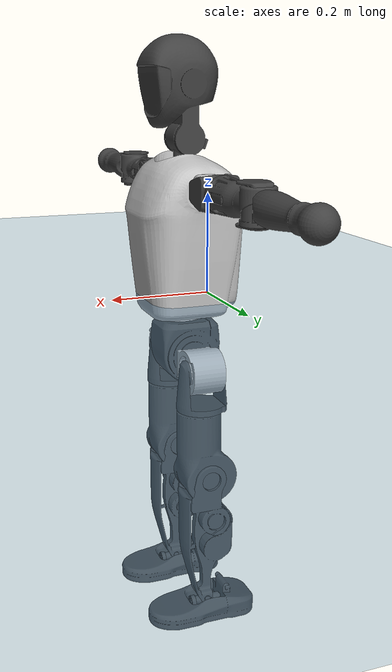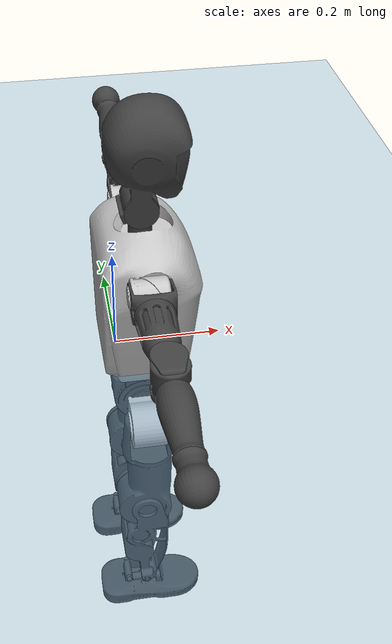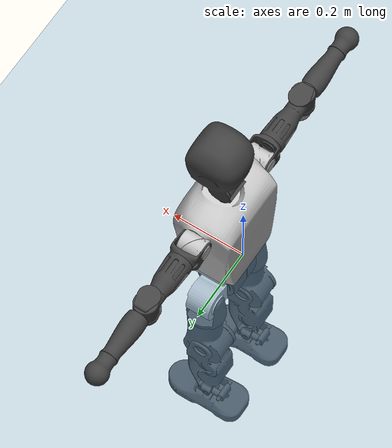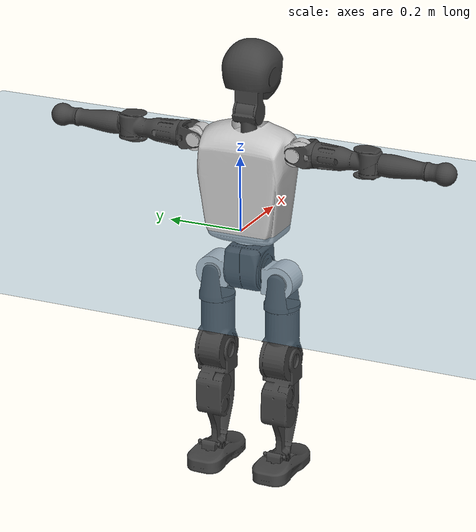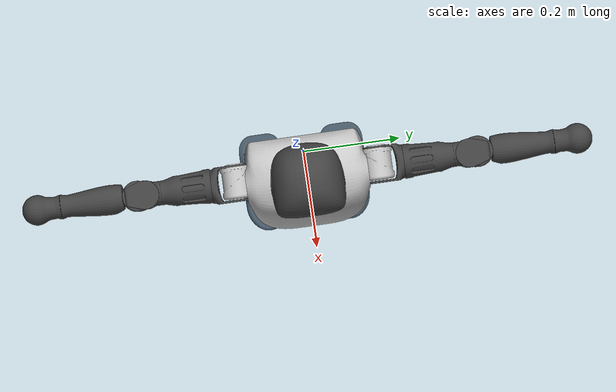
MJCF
<mujoco model="T1">
  <compiler angle="radian" assetdir="assets" balanceinertia="true" inertiafromgeom="false"/>

  <option timestep="0.005" density="1.2" viscosity="2e-05"/>

  <size nkey="1"/>

  <visual>
    <quality shadowsize="8192"/>
    <map shadowclip="0.5"/>
  </visual>

  <default>
    <default class="/">
      <joint armature="0.01" damping="0.01" frictionloss="0.1"/>
      <geom contype="0" conaffinity="0" group="1" solref="-1000 -80"/>
      <site size="0.01 0.005 0.005" group="5"/>
      <general forcelimited="true" biastype="affine" gainprm="25" biasprm="0 -25 -0.6"/>
      <default class="t1">
        <geom rgba="0.25 0.25 0.25 1"/>
        <default class="visual">
          <geom type="mesh" group="2"/>
        </default>
        <default class="collision">
          <geom group="3"/>
        </default>
        <default class="foot">
          <geom size="0.1115 0.05 0.015" type="box" condim="6" group="4" priority="1" solimp="0.015 1 0.015"/>
        </default>
        <default class="reward_collision_sphere">
          <geom group="5" rgba="1 0 0 1"/>
        </default>
      </default>
    </default>
  </default>

  <asset>
    <texture type="skybox" colorspace="auto" name="//unnamed_texture_0" builtin="gradient" rgb1="0.95 0.95 0.95" rgb2="0.95 0.95 0.95" width="100" height="600"/>
    <texture type="2d" colorspace="auto" name="texplane" builtin="checker" rgb1="0.345 0.575 0.748" rgb2="0.345 0.575 0.748" markrgb="1 1 1" width="512" height="512"/>
    <material name="MatPlane" class="/" texture="texplane" texuniform="true" texrepeat="2 2" specular="0.9"/>
    <mesh name="Trunk" class="/" file="Trunk.stl"/>
    <mesh name="H1" class="/" file="H1.stl"/>
    <mesh name="H2" class="/" file="H2.stl"/>
    <mesh name="AL1" class="/" file="AL1.stl"/>
    <mesh name="AL2" class="/" file="AL2.stl"/>
    <mesh name="AL3" class="/" file="AL3.stl"/>
    <mesh name="left_hand_link" class="/" file="left_hand_link.stl"/>
    <mesh name="AR1" class="/" file="AR1.stl"/>
    <mesh name="AR2" class="/" file="AR2.stl"/>
    <mesh name="AR3" class="/" file="AR3.stl"/>
    <mesh name="right_hand_link" class="/" file="right_hand_link.stl"/>
    <mesh name="Waist" class="/" file="Waist.stl"/>
    <mesh name="Hip_Pitch_Left" class="/" file="Hip_Pitch_Left.stl"/>
    <mesh name="Hip_Roll_Left" class="/" file="Hip_Roll_Left.stl"/>
    <mesh name="Hip_Yaw_Left" class="/" file="Hip_Yaw_Left.stl"/>
    <mesh name="Shank_Left" class="/" file="Shank_Left.stl"/>
    <mesh name="Ankle_Cross_Left" class="/" file="Ankle_Cross_Left.stl"/>
    <mesh name="left_foot_link" class="/" file="left_foot_link.stl"/>
    <mesh name="Hip_Pitch_Right" class="/" file="Hip_Pitch_Right.stl"/>
    <mesh name="Hip_Roll_Right" class="/" file="Hip_Roll_Right.stl"/>
    <mesh name="Hip_Yaw_Right" class="/" file="Hip_Yaw_Right.stl"/>
    <mesh name="Shank_Right" class="/" file="Shank_Right.stl"/>
    <mesh name="Ankle_Cross_Right" class="/" file="Ankle_Cross_Right.stl"/>
    <mesh name="right_foot_link" class="/" file="right_foot_link.stl"/>
  </asset>

  <worldbody>
    <geom name="floor" class="/" size="100 100 0.125" type="plane" group="0" material="MatPlane"/>
    <light name="toplight_shadow" class="/" pos="0 0 5" dir="0.0990148 0.0990148 -0.990148" type="directional" ambient="0.04 0.04 0.04" diffuse="0.55 0.55 0.55" specular="0.12 0.12 0.12"/>
    <light name="toplight_fill" class="/" pos="0 0 5" dir="0.0990148 0.0990148 -0.990148" type="directional" castshadow="false" ambient="0.04 0.04 0.04" diffuse="0.3 0.3 0.3" specular="0.08 0.08 0.08"/>
    <body name="trunk" childclass="t1" pos="-9.77205e-05 -1.31731e-05 0.000544295" quat="1 1.79601e-05 -0.000101825 -1.69762e-05">
      <inertial pos="0.0435971 -0.00113129 0.106236" quat="0.999948 0.000279948 -0.0100175 -0.0016419" mass="8.67721" diaginertia="0.0306417 0.0451 0.0576346"/>
      <joint name="//unnamed_joint_0" type="free" armature="0" damping="0" frictionloss="0"/>
      <geom name="//unnamed_geom_1" class="visual" rgba="0.76 0.76 0.76 1" mesh="Trunk"/>
      <geom name="//unnamed_geom_2" class="collision" size="0.0675673 0.0900897 0.135135" pos="0.0481282 0 0.120672" type="box"/>
      <geom name="//unnamed_geom_3" class="reward_collision_sphere" size="0.103603" pos="0.0481282 0 0.10056"/>
      <geom name="//unnamed_geom_4" class="reward_collision_sphere" size="0.0135135" pos="0.0481282 0.0760712 0"/>
      <geom name="//unnamed_geom_5" class="reward_collision_sphere" size="0.0135135" pos="0.0481282 -0.0760712 0"/>
      <geom name="//unnamed_geom_6" class="reward_collision_sphere" size="0.0135135" pos="0.0481282 0.0957602 0.181008"/>
      <geom name="//unnamed_geom_7" class="reward_collision_sphere" size="0.0135135" pos="0.0481282 -0.0957602 0.181008"/>
      <site name="imu" pos="-1.93304e-05 0.00647251 0.0050558" size="0.00900897"/>
      <camera name="track" pos="0 -1.78991 0" quat="0.707107 0.707107 0 0" mode="trackcom"/>
      <camera name="ego_camera" pos="0.0978606 0 0.422352" quat="-0.5 -0.5 0.5 0.5"/>
      <body name="H1" pos="0.0498408 0.000114512 0.244883" quat="1 -0.000362753 -0.00014352 -0.000375882">
        <inertial pos="-0.00059706 -0.0014322 0.0567462" quat="0.762779 -0.0174434 0.00219712 0.646421" mass="0.321157" diaginertia="8.15909e-05 0.000127966 0.00015706"/>
        <joint name="AAHead_yaw" pos="0 0 0" axis="0.0053067 0.00154459 0.999985" range="-1.59094 1.60956" armature="0.00892244" damping="0.00583478" frictionloss="0.0910632"/>
        <geom name="//unnamed_geom_8" class="visual" mesh="H1"/>
        <body name="H2" pos="-0.000594145 9.35153e-05 0.0596996" quat="0.999999 0.00102752 0.000254078 -0.000265331">
          <inertial pos="0.00638384 0.00035798 0.0995559" quat="0.988575 0.106185 -0.0734601 -0.07777" mass="0.460826" diaginertia="0.000677101 0.00111693 0.00173396"/>
          <joint name="Head_pitch" pos="0 0 0" axis="-0.00189928 -0.999998 -0.000405427" range="-1.22899 0.34315" armature="0.00901036" damping="0.00945523" frictionloss="0.0890355"/>
          <geom name="//unnamed_geom_9" class="visual" mesh="H2"/>
          <geom name="//unnamed_geom_10" class="collision" size="0.0720717" pos="0.00802136 0 0.110616"/>
          <geom name="//unnamed_geom_11" class="reward_collision_sphere" size="0.0810807" pos="0.0160427 0 0.10056"/>
        </body>
      </body>
      <body name="AL1" pos="0.0479974 0.0951333 0.220474" quat="1 0.000149418 0.00044757 -9.37817e-05">
        <inertial pos="-0.00146932 0.0404086 -0.000115728" quat="0.498653 0.500255 -0.502934 0.498144" mass="0.387833" diaginertia="0.000456809 0.000740219 0.000298944"/>
        <joint name="Left_Shoulder_Pitch" pos="0 0 0" axis="0.000260974 1 0.000526985" range="-3.27127 1.22517" armature="0.00895833" damping="0.0105777" frictionloss="0.0942805"/>
        <geom name="//unnamed_geom_12" class="visual" rgba="0.76 0.76 0.76 1" mesh="AL1"/>
        <body name="AL2" pos="0.00160581 0.0419224 -2.36974e-05" quat="1 0.000299904 0.000128924 -0.000680461">
          <inertial pos="0.00517753 0.0331968 -0.000304001" quat="0.490407 0.510201 -0.488699 0.510263" mass="0.115057" diaginertia="0.000131305 0.000193491 0.000178611"/>
          <joint name="Left_Shoulder_Roll" pos="0 0 0" axis="-0.999995 -0.00278378 -0.00123703" range="-1.57113 1.74483" armature="0.00896239" damping="0.00821458" frictionloss="0.0878395"/>
          <geom name="//unnamed_geom_13" class="visual" mesh="AL2"/>
          <body name="AL3" pos="0.0013628 0.0554652 -0.000158207" quat="1 -0.000513799 0.000474536 7.54607e-05">
            <inertial pos="0.00128651 0.0763669 -0.00117739" quat="0.707906 0.706227 -0.0104632 -0.00173239" mass="0.764893" diaginertia="0.00442963 0.00775578 0.000658144"/>
            <joint name="Left_Elbow_Pitch" pos="0 0 0" axis="0.00169149 -0.999992 0.00355307" range="-2.27955 2.30878" armature="0.00942133" damping="0.0105478" frictionloss="0.0991986"/>
            <geom name="//unnamed_geom_14" class="visual" mesh="AL3"/>
            <geom name="//unnamed_geom_15" class="collision" size="0.0270269 0.0675673" pos="0 0.0447478 0" quat="0.707105 0.707108 0 0" type="cylinder"/>
            <geom name="//unnamed_geom_16" class="reward_collision_sphere" size="0.0324323"/>
            <body name="left_hand_link" pos="0.00120558 0.130916 0.00121943" quat="1 5.0332e-05 -2.58593e-05 -0.000937272">
              <inertial pos="-0.000203299 0.0984622 0.000616942" quat="0.706416 0.707796 0.000615425 -0.000710766" mass="0.24222" diaginertia="0.00277888 0.00471906 0.000218279"/>
              <joint name="Left_Elbow_Yaw" pos="0 0 0" axis="0.00510914 0.00648302 0.999966" range="-2.42789 0.0419137" armature="0.00861847" damping="0.00386448" frictionloss="0.0867403"/>
              <geom name="//unnamed_geom_17" class="visual" mesh="left_hand_link"/>
              <geom name="//unnamed_geom_18" class="collision" size="0.0270269 0.0788285" pos="0 0.116344 0" quat="0.707105 0.707108 0 0" type="cylinder"/>
              <geom name="//unnamed_geom_19" class="reward_collision_sphere" size="0.0450448"/>
              <geom name="//unnamed_geom_20" class="reward_collision_sphere" size="0.0315314" pos="0 0.0984451 0"/>
              <geom name="//unnamed_geom_21" class="reward_collision_sphere" size="0.0315314" pos="0 0.192415 0"/>
            </body>
          </body>
        </body>
      </body>
      <body name="AR1" pos="0.0461817 -0.092561 0.218301" quat="1 -3.73863e-05 0.000351818 8.14625e-05">
        <inertial pos="-0.000638975 -0.0418156 -8.30469e-05" quat="0.503913 0.496228 -0.501565 0.498259" mass="0.38462" diaginertia="0.000455091 0.00075004 0.000301483"/>
        <joint name="Right_Shoulder_Pitch" pos="0 0 0" axis="0.00966704 -0.999919 -0.00824338" range="-1.22468 3.34271" armature="0.00906258" damping="0.00254869" frictionloss="0.0817645"/>
        <geom name="//unnamed_geom_22" class="visual" rgba="0.76 0.76 0.76 1" mesh="AR1"/>
        <body name="AR2" pos="0.00145615 -0.0419752 -0.000449923" quat="1 -9.7484e-05 4.7981e-05 2.90267e-05">
          <inertial pos="0.00361868 -0.0337751 0.000797605" quat="0.513814 0.484914 -0.514094 0.486375" mass="0.12205" diaginertia="0.000135961 0.000204379 0.000184732"/>
          <joint name="Right_Shoulder_Roll" pos="0 0 0" axis="-0.999974 -0.00714211 0.000862225" range="-1.74664 1.58028" armature="0.00893455" damping="0.00271514" frictionloss="0.0940914"/>
          <geom name="//unnamed_geom_23" class="visual" mesh="AR2"/>
          <body name="AR3" pos="-0.00167747 -0.0549647 0.000119965" quat="1 1.58415e-05 -0.000347821 0.000137581">
            <inertial pos="-0.000392301 -0.0758387 0.000376656" quat="0.70469 0.709512 0.00131498 0.00147124" mass="0.77343" diaginertia="0.00439998 0.00754153 0.000656135"/>
            <joint name="Right_Elbow_Pitch" pos="0 0 0" axis="-0.000466073 0.999999 0.00141067" range="-2.28432 2.24518" armature="0.00889806" damping="0.0131043" frictionloss="0.0891014"/>
            <geom name="//unnamed_geom_24" class="visual" mesh="AR3"/>
            <geom name="//unnamed_geom_25" class="collision" size="0.0270269 0.0675673" pos="0 -0.0447478 0" quat="0.707105 0.707108 0 0" type="cylinder"/>
            <geom name="//unnamed_geom_26" class="reward_collision_sphere" size="0.0324323"/>
            <body name="right_hand_link" pos="-0.000191383 -0.132012 0.000461365" quat="1 7.65628e-05 0.000133525 -1.85627e-05">
              <inertial pos="-0.000698424 -0.0981902 -0.000810642" quat="0.706721 0.707492 -0.000337814 0.000166057" mass="0.233722" diaginertia="0.00273109 0.00466174 0.000220677"/>
              <joint name="Right_Elbow_Yaw" pos="0 0 0" axis="-0.00193219 -0.00407722 0.99999" range="-0.0213494 2.46228" armature="0.00883367" damping="0.00815809" frictionloss="0.0877117"/>
              <geom name="//unnamed_geom_27" class="visual" mesh="right_hand_link"/>
              <geom name="//unnamed_geom_28" class="collision" size="0.0270269 0.0788285" pos="0 -0.116344 0" quat="0.707105 0.707108 0 0" type="cylinder"/>
              <geom name="//unnamed_geom_29" class="reward_collision_sphere" size="0.0450448"/>
              <geom name="//unnamed_geom_30" class="reward_collision_sphere" size="0.0315314" pos="0 -0.0984451 0"/>
              <geom name="//unnamed_geom_31" class="reward_collision_sphere" size="0.0315314" pos="0 -0.192415 0"/>
            </body>
          </body>
        </body>
      </body>
      <body name="Waist" pos="0.048155 -0.0018133 -0.116202" quat="1 0.000341362 -3.67071e-05 -0.000112717">
        <inertial pos="0.00196831 -0.00157988 0.00753975" quat="0.983603 0.000374531 -0.180323 0.00288467" mass="1.84685" diaginertia="0.00172233 0.00295842 0.00480085"/>
        <joint name="Waist" pos="0 0 0" axis="4.80196e-05 7.93213e-05 1" range="-1.56581 1.57532" armature="0.00861631" damping="0.00577899" frictionloss="0.0821241"/>
        <geom name="//unnamed_geom_32" class="visual" mesh="Waist"/>
        <body name="Hip_Pitch_Left" pos="-0.000184139 0.0934401 0.000874509" quat="1 0.000266228 0.000421116 0.00058115">
          <inertial pos="0.000964333 -0.00594815 -0.0184832" quat="0.97533 0.220066 0.0167037 0.00490447" mass="0.745616" diaginertia="0.000607829 0.000868171 0.00131716"/>
          <joint name="Left_Hip_Pitch" pos="0 0 0" axis="0.00843699 0.999962 -0.00223432" range="-1.80485 1.55542" armature="0.00946868" damping="0.0141338" frictionloss="0.0855338"/>
          <geom name="//unnamed_geom_33" class="visual" rgba="0.76 0.76 0.76 1" mesh="Hip_Pitch_Left"/>
          <body name="Hip_Roll_Left" pos="0.00185728 -0.000586352 -0.0207801" quat="0.999999 0.00108916 0.000303997 -0.000359111">
            <inertial pos="-0.000301182 -0.000934589 -0.0546709" quat="0.705529 -0.00169452 0.00336111 0.708671" mass="0.28244" diaginertia="0.00057072 0.000873662 0.000534989"/>
            <joint name="Left_Hip_Roll" pos="0 0 0" axis="-0.999957 -0.00875359 0.00312169" range="-1.57636 0.234359" armature="0.00963191" damping="0.010932" frictionloss="0.0878541"/>
            <geom name="//unnamed_geom_34" class="visual" mesh="Hip_Roll_Left"/>
            <geom name="//unnamed_geom_35" class="reward_collision_sphere" size="0.0495493"/>
            <body name="Hip_Yaw_Left" pos="0.00258499 -0.00130584 -0.0818081" quat="0.999999 -0.000450549 0.000768643 -0.000574485">
              <inertial pos="-0.00535774 -0.000569774 -0.089205" quat="0.69661 -0.0346978 -0.0320452 0.715893" mass="1.58744" diaginertia="0.00858778 0.0146139 0.00270164"/>
              <joint name="Left_Hip_Yaw" pos="0 0 0" axis="-0.00452575 -0.00554513 -0.999974" range="-1.01296 0.971364" armature="0.00918266" damping="0.0126079" frictionloss="0.0861515"/>
              <geom name="//unnamed_geom_36" class="visual" mesh="Hip_Yaw_Left"/>
              <geom name="//unnamed_geom_37" class="collision" size="0.0450448 0.0720717" type="cylinder"/>
              <body name="Shank_Left" pos="-0.0114434 -0.000244299 -0.137285" quat="1 0.000121459 -8.77308e-06 -8.04839e-05">
                <inertial pos="-0.00368549 -0.000863758 -0.124632" quat="0.997599 0.0017155 -0.0243572 0.0648129" mass="1.27239" diaginertia="0.0115896 0.0197349 0.00189801"/>
                <joint name="Left_Knee_Pitch" pos="0 0 0" axis="-0.000117144 1 -3.94595e-05" range="-0.0135894 2.32159" armature="0.00890911" damping="0.0130068" frictionloss="0.0925454"/>
                <geom name="//unnamed_geom_38" class="visual" mesh="Shank_Left"/>
                <geom name="//unnamed_geom_39" class="collision" size="0.0450448 0.0675673" pos="0 0 -0.120672" type="cylinder"/>
                <geom name="//unnamed_geom_40" class="reward_collision_sphere" size="0.0585583"/>
                <body name="Ankle_Cross_Left" pos="-0.000888852 -0.000676185 -0.280199" quat="1 0.000146782 -0.000132162 -7.87111e-05">
                  <inertial pos="-0.002464 -0.000581767 -0.00734202" quat="0.443137 0.54984 0.552078 0.443299" mass="0.0550286" diaginertia="9.63778e-06 1.50946e-05 1.17949e-05"/>
                  <joint name="Left_Ankle_Pitch" pos="0 0 0" axis="-0.00118761 0.999994 -0.00323372" range="-0.852045 0.330581" armature="0.00915031" damping="0.00530951" frictionloss="0.088928"/>
                  <geom name="//unnamed_geom_41" class="visual" mesh="Ankle_Cross_Left"/>
                  <body name="left_foot_link" pos="-0.00099695 0.000243423 -0.011889" quat="1 -3.65217e-05 1.31759e-06 8.63744e-05">
                    <inertial pos="-0.000977121 0.000961632 -0.00881469" quat="0.00036805 0.621311 -0.000510799 0.783564" mass="0.485972" diaginertia="0.000912275 0.00134583 0.0022032"/>
                    <joint name="Left_Ankle_Roll" pos="0 0 0" axis="-0.999998 -0.000721012 -0.00199619" range="-0.421734 0.476382" armature="0.00986033" damping="0.0108039" frictionloss="0.0856917"/>
                    <geom name="//unnamed_geom_42" class="visual" mesh="left_foot_link"/>
                    <geom name="left_foot" class="foot" size="0.106571 0.0455311 0.0142578" pos="0.00802136 0 -0.015084"/>
                    <geom name="//unnamed_geom_44" class="reward_collision_sphere" size="0.0468466" pos="0.00802136 0 -0.015084"/>
                    <geom name="//unnamed_geom_45" class="reward_collision_sphere" size="0.0270269" pos="0.0762029 -0.020584 -0.015084"/>
                    <geom name="//unnamed_geom_46" class="reward_collision_sphere" size="0.0270269" pos="-0.0561495 -0.020584 -0.015084"/>
                    <site name="left_foot" class="foot" pos="0.00802136 0 -0.015084" size="0.00900897"/>
                  </body>
                </body>
              </body>
            </body>
          </body>
        </body>
        <body name="Hip_Pitch_Right" pos="0.000309305 -0.0939177 -0.000764637" quat="1 -1.84256e-05 -0.000201566 0.000180219">
          <inertial pos="-0.000937262 0.00715205 -0.0181041" quat="0.973459 -0.228163 0.0166838 -0.00639732" mass="0.764242" diaginertia="0.000608041 0.000846991 0.00129758"/>
          <joint name="Right_Hip_Pitch" pos="0 0 0" axis="0.00498696 -0.999988 0.000191042" range="-1.5792 1.80742" armature="0.0100703" damping="0.00979985" frictionloss="0.0938778"/>
          <geom name="//unnamed_geom_47" class="visual" rgba="0.76 0.76 0.76 1" mesh="Hip_Pitch_Right"/>
          <body name="Hip_Roll_Right" pos="5.42013e-05 0.000203075 -0.0185155" quat="1 6.22515e-05 -0.000262065 -0.00011901">
            <inertial pos="0.00105147 -0.0022564 -0.0543647" quat="0.707685 -0.000922492 -0.0112156 0.706439" mass="0.273811" diaginertia="0.000565557 0.000845779 0.000514655"/>
            <joint name="Right_Hip_Roll" pos="0 0 0" axis="-1 0.000546338 0.000198962" range="-0.212606 1.56924" armature="0.00912736" damping="0.00373972" frictionloss="0.0872839"/>
            <geom name="//unnamed_geom_48" class="visual" mesh="Hip_Roll_Right"/>
            <geom name="//unnamed_geom_49" class="reward_collision_sphere" size="0.0495493"/>
            <body name="Hip_Yaw_Right" pos="0.00113161 -0.00053775 -0.0828017" quat="1 -0.000229441 0.000454984 7.47321e-05">
              <inertial pos="-0.00589809 -0.00265318 -0.0908457" quat="0.714371 -0.0361331 -0.0316055 0.698119" mass="1.53214" diaginertia="0.00830543 0.0141024 0.0026145"/>
              <joint name="Right_Hip_Yaw" pos="0 0 0" axis="0.00143319 -0.00284642 -0.999995" range="-0.994215 1.02341" armature="0.00908583" damping="0.00502967" frictionloss="0.089829"/>
              <geom name="//unnamed_geom_50" class="visual" mesh="Hip_Yaw_Right"/>
              <geom name="//unnamed_geom_51" class="collision" size="0.0450448 0.0720717" type="cylinder"/>
              <body name="Shank_Right" pos="-0.0108123 -0.00162905 -0.134871" quat="1 5.43022e-05 -6.41609e-05 -6.32235e-06">
                <inertial pos="-0.00488068 -0.000316794 -0.122403" quat="0.999236 -0.000115325 -0.023563 -0.0311752" mass="1.29952" diaginertia="0.0112252 0.0201099 0.0019988"/>
                <joint name="Right_Knee_Pitch" pos="0 0 0" axis="0.00142404 -0.999995 -0.00276696" range="-2.35716 -0.022293" armature="0.00899817" damping="0.00439149" frictionloss="0.0892265"/>
                <geom name="//unnamed_geom_52" class="visual" mesh="Shank_Right"/>
                <geom name="//unnamed_geom_53" class="collision" size="0.0450448 0.0675673" pos="0 0 -0.120672" type="cylinder"/>
                <geom name="//unnamed_geom_54" class="reward_collision_sphere" size="0.0585583"/>
                <body name="Ankle_Cross_Right" pos="0.00081485 -0.0012914 -0.281333" quat="1 0.000310996 -0.000175615 0.000119687">
                  <inertial pos="-0.00233135 -8.72048e-05 -0.00979701" quat="0.440388 0.557171 0.545032 0.445601" mass="0.0526779" diaginertia="9.2101e-06 1.46033e-05 1.11893e-05"/>
                  <joint name="Right_Ankle_Pitch" pos="0 0 0" axis="4.68959e-05 -0.99998 -0.0063367" range="-0.34572 0.848866" armature="0.00906854" damping="0.00368541" frictionloss="0.0864952"/>
                  <geom name="//unnamed_geom_55" class="visual" mesh="Ankle_Cross_Right"/>
                  <body name="right_foot_link" pos="-0.000865843 -0.000487722 -0.0122165" quat="1 0.000171311 1.77704e-05 0.000476558">
                    <inertial pos="-0.00222536 -0.000480385 -0.00899584" quat="0.000368668 0.621285 0.000777183 0.783584" mass="0.498594" diaginertia="0.000902331 0.00137987 0.00225974"/>
                    <joint name="Right_Ankle_Roll" pos="0 0 0" axis="-0.999999 -0.00109782 -0.00118239" range="-0.435305 0.448572" armature="0.00864366" damping="0.0185238" frictionloss="0.08937"/>
                    <geom name="//unnamed_geom_56" class="visual" mesh="right_foot_link"/>
                    <geom name="right_foot" class="foot" size="0.0962233 0.0454329 0.0137447" pos="0.00802136 0 -0.015084"/>
                    <geom name="//unnamed_geom_58" class="reward_collision_sphere" size="0.0360359"/>
                    <geom name="//unnamed_geom_59" class="reward_collision_sphere" size="0.0270269" pos="0.00802136 0 -0.015084"/>
                    <geom name="//unnamed_geom_60" class="reward_collision_sphere" size="0.0270269" pos="0.0762029 0.020584 -0.015084"/>
                    <geom name="//unnamed_geom_61" class="reward_collision_sphere" size="0.0270269" pos="-0.0561495 0.020584 -0.015084"/>
                    <site name="right_foot" class="foot" pos="0.00802136 0 -0.015084" size="0.00900897"/>
                  </body>
                </body>
              </body>
            </body>
          </body>
        </body>
      </body>
    </body>
  </worldbody>

  <contact>
    <pair class="/" geom1="floor" geom2="left_foot" name="//unnamed_contact_0"/>
    <pair class="/" geom1="floor" geom2="right_foot" name="//unnamed_contact_1"/>
  </contact>

  <actuator>
    <general name="AAHead_yaw" class="/" joint="AAHead_yaw" forcerange="-6.33885 6.33885" gainprm="22.3759" biasprm="0 -22.3759 -0.53314"/>
    <general name="Head_pitch" class="/" joint="Head_pitch" forcerange="-6.38658 6.38658" gainprm="22.3759" biasprm="0 -22.3759 -0.53314"/>
    <general name="Left_Shoulder_Pitch" class="/" joint="Left_Shoulder_Pitch" forcerange="-16.7577 16.7577" gainprm="22.3759" biasprm="0 -22.3759 -0.53314"/>
    <general name="Left_Shoulder_Roll" class="/" joint="Left_Shoulder_Roll" forcerange="-16.4807 16.4807" gainprm="22.3759" biasprm="0 -22.3759 -0.53314"/>
    <general name="Left_Elbow_Pitch" class="/" joint="Left_Elbow_Pitch" forcerange="-17.2647 17.2647" gainprm="22.3759" biasprm="0 -22.3759 -0.53314"/>
    <general name="Left_Elbow_Yaw" class="/" joint="Left_Elbow_Yaw" forcerange="-16.3852 16.3852" gainprm="22.3759" biasprm="0 -22.3759 -0.53314"/>
    <general name="Right_Shoulder_Pitch" class="/" joint="Right_Shoulder_Pitch" forcerange="-15.1561 15.1561" gainprm="22.3759" biasprm="0 -22.3759 -0.53314"/>
    <general name="Right_Shoulder_Roll" class="/" joint="Right_Shoulder_Roll" forcerange="-16.376 16.376" gainprm="22.3759" biasprm="0 -22.3759 -0.53314"/>
    <general name="Right_Elbow_Pitch" class="/" joint="Right_Elbow_Pitch" forcerange="-17.3146 17.3146" gainprm="22.3759" biasprm="0 -22.3759 -0.53314"/>
    <general name="Right_Elbow_Yaw" class="/" joint="Right_Elbow_Yaw" forcerange="-15.554 15.554" gainprm="22.3759" biasprm="0 -22.3759 -0.53314"/>
    <general name="Waist" class="/" joint="Waist" forcerange="-27.2117 27.2117" gainprm="22.3759" biasprm="0 -22.3759 -0.53314"/>
    <general name="Left_Hip_Pitch" class="/" joint="Left_Hip_Pitch" forcerange="-41.9098 41.9098" gainprm="22.3759" biasprm="0 -22.3759 -0.53314"/>
    <general name="Left_Hip_Roll" class="/" joint="Left_Hip_Roll" forcerange="-28.4754 28.4754" gainprm="22.3759" biasprm="0 -22.3759 -0.53314"/>
    <general name="Left_Hip_Yaw" class="/" joint="Left_Hip_Yaw" forcerange="-24.9063 24.9063" gainprm="22.3759" biasprm="0 -22.3759 -0.53314"/>
    <general name="Left_Knee_Pitch" class="/" joint="Left_Knee_Pitch" forcerange="-54.7723 54.7723" gainprm="22.3759" biasprm="0 -22.3759 -0.53314"/>
    <general name="Left_Ankle_Pitch" class="/" joint="Left_Ankle_Pitch" forcerange="-16.4487 16.4487" gainprm="22.3759" biasprm="0 -22.3759 -0.53314"/>
    <general name="Left_Ankle_Roll" class="/" joint="Left_Ankle_Roll" forcerange="-13.3254 13.3254" gainprm="22.3759" biasprm="0 -22.3759 -0.53314"/>
    <general name="Right_Hip_Pitch" class="/" joint="Right_Hip_Pitch" forcerange="-40.1541 40.1541" gainprm="22.3759" biasprm="0 -22.3759 -0.53314"/>
    <general name="Right_Hip_Roll" class="/" joint="Right_Hip_Roll" forcerange="-27.5736 27.5736" gainprm="22.3759" biasprm="0 -22.3759 -0.53314"/>
    <general name="Right_Hip_Yaw" class="/" joint="Right_Hip_Yaw" forcerange="-27.691 27.691" gainprm="22.3759" biasprm="0 -22.3759 -0.53314"/>
    <general name="Right_Knee_Pitch" class="/" joint="Right_Knee_Pitch" forcerange="-56.224 56.224" gainprm="22.3759" biasprm="0 -22.3759 -0.53314"/>
    <general name="Right_Ankle_Pitch" class="/" joint="Right_Ankle_Pitch" forcerange="-17.7753 17.7753" gainprm="22.3759" biasprm="0 -22.3759 -0.53314"/>
    <general name="Right_Ankle_Roll" class="/" joint="Right_Ankle_Roll" forcerange="-12.6332 12.6332" gainprm="22.3759" biasprm="0 -22.3759 -0.53314"/>
  </actuator>

  <sensor>
    <gyro site="imu" name="imu_angular_velocity"/>
    <velocimeter site="imu" name="imu_linear_velocity"/>
    <framelinvel objtype="site" objname="left_foot" name="left_foot_global_linear_velocity"/>
    <framelinvel objtype="site" objname="right_foot" name="right_foot_global_linear_velocity"/>
  </sensor>

  <keyframe>
    <key name="home" qpos="0 0 0.6385 1 0 0 0 0 0 0 1.4 0 -0.4 0 -1.4 0 0.4 0 -0.4 0 0 0.8 -0.4 0 0.4 0 0 -0.8 0.4 0"/>
  </keyframe>
</mujoco>
